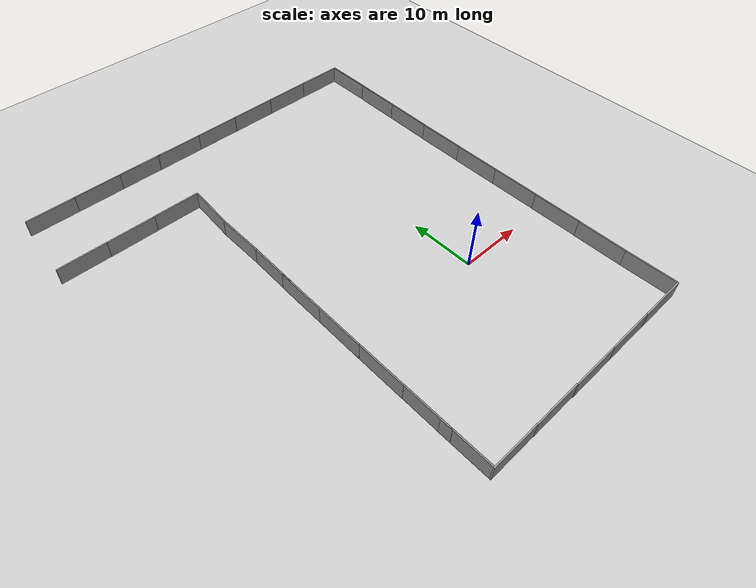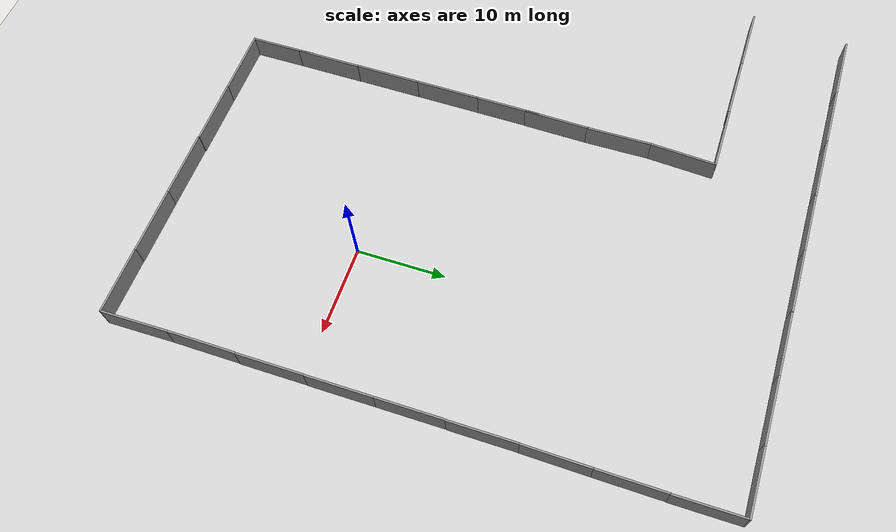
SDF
<sdf version="1.4">
 <world name="default">
  <light name="sun" type="directional">
   <pose>0 0 10 0 -0 0</pose>
   <diffuse>0.8 0.8 0.8 1</diffuse>
   <specular>0.2 0.2 0.2 1</specular>
   <attenuation>
    <range>1000</range>
    <constant>0.9</constant>
    <linear>0.01</linear>
    <quadratic>0.001</quadratic>
   </attenuation>
   <direction>0.5 0.1 -0.9</direction>
  </light>
  <model name="ground_plane">
   <static>1</static>
   <link name="link">
    <collision name="collision">
     <geometry><plane><normal>0 0 1</normal><size>100 100</size></plane></geometry>
     <surface><friction><ode><mu>100</mu><mu2>50</mu2></ode></friction></surface>
    </collision>
    <visual name="visual">
     <cast_shadows>0</cast_shadows>
     <geometry><plane><normal>0 0 1</normal><size>100 100</size></plane></geometry>
     <material>
      <script><uri>file://media/materials/scripts/gazebo.material</uri><name>Gazebo/Grey</name></script>
     </material>
    </visual>
    <velocity_decay><linear>0</linear><angular>0</angular></velocity_decay>
   </link>
  </model>
  <physics type="ode">
   <max_step_size>0.001</max_step_size>
   <real_time_factor>1</real_time_factor>
   <real_time_update_rate>1000</real_time_update_rate>
   <gravity>0 0 -9.8</gravity>
  </physics>
  <scene>
   <ambient>0 0 0 1</ambient>
   <shadows>1</shadows>
   <grid>0</grid>
   <background>0.7 0.7 0.7 1</background>
  </scene>
  <spherical_coordinates>
   <surface_model>EARTH_WGS84</surface_model>
   <latitude_deg>0</latitude_deg>
   <longitude_deg>0</longitude_deg>
   <elevation>0</elevation>
   <heading_deg>0</heading_deg>
  </spherical_coordinates>
  <model name="grey_wall_0">
   <static>1</static>
   <link name="link">
    <pose>0 0 1.4 0 -0 0</pose>
    <collision name="collision"><geometry><box><size>7.5 0.2 2.8</size></box></geometry></collision>
    <visual name="visual">
     <cast_shadows>0</cast_shadows>
     <geometry><box><size>7.5 0.2 2.8</size></box></geometry>
     <material>
      <script>
       <uri>model://grey_wall/materials/scripts</uri>
       <uri>model://grey_wall/materials/textures</uri>
       <name>vrc/grey_wall</name>
      </script>
     </material>
    </visual>
    <velocity_decay><linear>0</linear><angular>0</angular></velocity_decay>
   </link>
   <pose>11.9495 -21.5417 0 0 -0 0</pose>
  </model>
  <model name="grey_wall_1">
   <static>1</static>
   <link name="link">
    <pose>0 0 1.4 0 -0 0</pose>
    <collision name="collision"><geometry><box><size>7.5 0.2 2.8</size></box></geometry></collision>
    <visual name="visual">
     <cast_shadows>0</cast_shadows>
     <geometry><box><size>7.5 0.2 2.8</size></box></geometry>
     <material>
      <script>
       <uri>model://grey_wall/materials/scripts</uri>
       <uri>model://grey_wall/materials/textures</uri>
       <name>vrc/grey_wall</name>
      </script>
     </material>
    </visual>
    <velocity_decay><linear>0</linear><angular>0</angular></velocity_decay>
   </link>
   <pose>4.46115 -21.5125 0 0 -0 0</pose>
  </model>
  <model name="grey_wall_2">
   <static>1</static>
   <link name="link">
    <pose>0 0 1.4 0 -0 0</pose>
    <collision name="collision"><geometry><box><size>7.5 0.2 2.8</size></box></geometry></collision>
    <visual name="visual">
     <cast_shadows>0</cast_shadows>
     <geometry><box><size>7.5 0.2 2.8</size></box></geometry>
     <material>
      <script>
       <uri>model://grey_wall/materials/scripts</uri>
       <uri>model://grey_wall/materials/textures</uri>
       <name>vrc/grey_wall</name>
      </script>
     </material>
    </visual>
    <velocity_decay><linear>0</linear><angular>0</angular></velocity_decay>
   </link>
   <pose>-3 -21.5146 0 0 -0 0</pose>
  </model>
  <model name="grey_wall_3">
   <static>1</static>
   <link name="link">
    <pose>0 0 1.4 0 -0 0</pose>
    <collision name="collision"><geometry><box><size>7.5 0.2 2.8</size></box></geometry></collision>
    <visual name="visual">
     <cast_shadows>0</cast_shadows>
     <geometry><box><size>7.5 0.2 2.8</size></box></geometry>
     <material>
      <script>
       <uri>model://grey_wall/materials/scripts</uri>
       <uri>model://grey_wall/materials/textures</uri>
       <name>vrc/grey_wall</name>
      </script>
     </material>
    </visual>
    <velocity_decay><linear>0</linear><angular>0</angular></velocity_decay>
   </link>
   <pose>-10.457 -21.4428 0 0 -0 0</pose>
  </model>
  <model name="grey_wall_4">
   <static>1</static>
   <link name="link">
    <pose>0 0 1.4 0 -0 0</pose>
    <collision name="collision"><geometry><box><size>7.5 0.2 2.8</size></box></geometry></collision>
    <visual name="visual">
     <cast_shadows>0</cast_shadows>
     <geometry><box><size>7.5 0.2 2.8</size></box></geometry>
     <material>
      <script>
       <uri>model://grey_wall/materials/scripts</uri>
       <uri>model://grey_wall/materials/textures</uri>
       <name>vrc/grey_wall</name>
      </script>
     </material>
    </visual>
    <velocity_decay><linear>0</linear><angular>0</angular></velocity_decay>
   </link>
   <pose>-17.8741 -21.4252 0 0 -0 0</pose>
  </model>
  <model name="grey_wall_6">
   <static>1</static>
   <link name="link">
    <pose>0 0 1.4 0 -0 0</pose>
    <collision name="collision"><geometry><box><size>7.5 0.2 2.8</size></box></geometry></collision>
    <visual name="visual">
     <cast_shadows>0</cast_shadows>
     <geometry><box><size>7.5 0.2 2.8</size></box></geometry>
     <material>
      <script>
       <uri>model://grey_wall/materials/scripts</uri>
       <uri>model://grey_wall/materials/textures</uri>
       <name>vrc/grey_wall</name>
      </script>
     </material>
    </visual>
    <velocity_decay><linear>0</linear><angular>0</angular></velocity_decay>
   </link>
   <pose>15.6069 -17.7328 0 0 -0 1.58364</pose>
  </model>
  <model name="grey_wall_7">
   <static>1</static>
   <link name="link">
    <pose>0 0 1.4 0 -0 0</pose>
    <collision name="collision"><geometry><box><size>7.5 0.2 2.8</size></box></geometry></collision>
    <visual name="visual">
     <cast_shadows>0</cast_shadows>
     <geometry><box><size>7.5 0.2 2.8</size></box></geometry>
     <material>
      <script>
       <uri>model://grey_wall/materials/scripts</uri>
       <uri>model://grey_wall/materials/textures</uri>
       <name>vrc/grey_wall</name>
      </script>
     </material>
    </visual>
    <velocity_decay><linear>0</linear><angular>0</angular></velocity_decay>
   </link>
   <pose>15.5792 -10.2805 0 0 0 -1.5757</pose>
  </model>
  <model name="grey_wall_8">
   <static>1</static>
   <link name="link">
    <pose>0 0 1.4 0 -0 0</pose>
    <collision name="collision"><geometry><box><size>7.5 0.2 2.8</size></box></geometry></collision>
    <visual name="visual">
     <cast_shadows>0</cast_shadows>
     <geometry><box><size>7.5 0.2 2.8</size></box></geometry>
     <material>
      <script>
       <uri>model://grey_wall/materials/scripts</uri>
       <uri>model://grey_wall/materials/textures</uri>
       <name>vrc/grey_wall</name>
      </script>
     </material>
    </visual>
    <velocity_decay><linear>0</linear><angular>0</angular></velocity_decay>
   </link>
   <pose>15.6357 -2.80636 0 0 0 -1.57048</pose>
  </model>
  <model name="grey_wall_9">
   <static>1</static>
   <link name="link">
    <pose>0 0 1.4 0 -0 0</pose>
    <collision name="collision"><geometry><box><size>7.5 0.2 2.8</size></box></geometry></collision>
    <visual name="visual">
     <cast_shadows>0</cast_shadows>
     <geometry><box><size>7.5 0.2 2.8</size></box></geometry>
     <material>
      <script>
       <uri>model://grey_wall/materials/scripts</uri>
       <uri>model://grey_wall/materials/textures</uri>
       <name>vrc/grey_wall</name>
      </script>
     </material>
    </visual>
    <velocity_decay><linear>0</linear><angular>0</angular></velocity_decay>
   </link>
   <pose>15.6626 4.62392 0 0 0 -1.57072</pose>
  </model>
  <model name="grey_wall_10">
   <static>1</static>
   <link name="link">
    <pose>0 0 1.4 0 -0 0</pose>
    <collision name="collision"><geometry><box><size>7.5 0.2 2.8</size></box></geometry></collision>
    <visual name="visual">
     <cast_shadows>0</cast_shadows>
     <geometry><box><size>7.5 0.2 2.8</size></box></geometry>
     <material>
      <script>
       <uri>model://grey_wall/materials/scripts</uri>
       <uri>model://grey_wall/materials/textures</uri>
       <name>vrc/grey_wall</name>
      </script>
     </material>
    </visual>
    <velocity_decay><linear>0</linear><angular>0</angular></velocity_decay>
   </link>
   <pose>15.665 11.9925 0 0 0 -1.57143</pose>
  </model>
  <model name="grey_wall_11">
   <static>1</static>
   <link name="link">
    <pose>0 0 1.4 0 -0 0</pose>
    <collision name="collision"><geometry><box><size>7.5 0.2 2.8</size></box></geometry></collision>
    <visual name="visual">
     <cast_shadows>0</cast_shadows>
     <geometry><box><size>7.5 0.2 2.8</size></box></geometry>
     <material>
      <script>
       <uri>model://grey_wall/materials/scripts</uri>
       <uri>model://grey_wall/materials/textures</uri>
       <name>vrc/grey_wall</name>
      </script>
     </material>
    </visual>
    <velocity_decay><linear>0</linear><angular>0</angular></velocity_decay>
   </link>
   <pose>15.8981 34.2262 0 0 0 -1.58174</pose>
  </model>
  <model name="grey_wall_12">
   <static>1</static>
   <link name="link">
    <pose>0 0 1.4 0 -0 0</pose>
    <collision name="collision"><geometry><box><size>7.5 0.2 2.8</size></box></geometry></collision>
    <visual name="visual">
     <cast_shadows>0</cast_shadows>
     <geometry><box><size>7.5 0.2 2.8</size></box></geometry>
     <material>
      <script>
       <uri>model://grey_wall/materials/scripts</uri>
       <uri>model://grey_wall/materials/textures</uri>
       <name>vrc/grey_wall</name>
      </script>
     </material>
    </visual>
    <velocity_decay><linear>0</linear><angular>0</angular></velocity_decay>
   </link>
   <pose>15.8003 26.8897 0 0 0 -1.58522</pose>
  </model>
  <model name="grey_wall_13">
   <static>1</static>
   <link name="link">
    <pose>0 0 1.4 0 -0 0</pose>
    <collision name="collision"><geometry><box><size>7.5 0.2 2.8</size></box></geometry></collision>
    <visual name="visual">
     <cast_shadows>0</cast_shadows>
     <geometry><box><size>7.5 0.2 2.8</size></box></geometry>
     <material>
      <script>
       <uri>model://grey_wall/materials/scripts</uri>
       <uri>model://grey_wall/materials/textures</uri>
       <name>vrc/grey_wall</name>
      </script>
     </material>
    </visual>
    <velocity_decay><linear>0</linear><angular>0</angular></velocity_decay>
   </link>
   <pose>15.7093 19.4176 0 0 0 -1.57249</pose>
  </model>
  <model name="grey_wall_14">
   <static>1</static>
   <link name="link">
    <pose>0 0 1.4 0 -0 0</pose>
    <collision name="collision"><geometry><box><size>7.5 0.2 2.8</size></box></geometry></collision>
    <visual name="visual">
     <cast_shadows>0</cast_shadows>
     <geometry><box><size>7.5 0.2 2.8</size></box></geometry>
     <material>
      <script>
       <uri>model://grey_wall/materials/scripts</uri>
       <uri>model://grey_wall/materials/textures</uri>
       <name>vrc/grey_wall</name>
      </script>
     </material>
    </visual>
    <velocity_decay><linear>0</linear><angular>0</angular></velocity_decay>
   </link>
   <pose>15.9757 41.6543 0 0 0 -1.57098</pose>
  </model>
  <model name="grey_wall_15">
   <static>1</static>
   <link name="link">
    <pose>0 0 1.4 0 -0 0</pose>
    <collision name="collision"><geometry><box><size>7.5 0.2 2.8</size></box></geometry></collision>
    <visual name="visual">
     <cast_shadows>0</cast_shadows>
     <geometry><box><size>7.5 0.2 2.8</size></box></geometry>
     <material>
      <script>
       <uri>model://grey_wall/materials/scripts</uri>
       <uri>model://grey_wall/materials/textures</uri>
       <name>vrc/grey_wall</name>
      </script>
     </material>
    </visual>
    <velocity_decay><linear>0</linear><angular>0</angular></velocity_decay>
   </link>
   <pose>-21.5248 -17.7015 0 0 0 -1.56656</pose>
  </model>
  <model name="grey_wall_16">
   <static>1</static>
   <link name="link">
    <pose>0 0 1.4 0 -0 0</pose>
    <collision name="collision"><geometry><box><size>7.5 0.2 2.8</size></box></geometry></collision>
    <visual name="visual">
     <cast_shadows>0</cast_shadows>
     <geometry><box><size>7.5 0.2 2.8</size></box></geometry>
     <material>
      <script>
       <uri>model://grey_wall/materials/scripts</uri>
       <uri>model://grey_wall/materials/textures</uri>
       <name>vrc/grey_wall</name>
      </script>
     </material>
    </visual>
    <velocity_decay><linear>0</linear><angular>0</angular></velocity_decay>
   </link>
   <pose>-21.5208 -12 0 0 0 -1.57415</pose>
  </model>
  <model name="grey_wall_17">
   <static>1</static>
   <link name="link">
    <pose>0 0 1.4 0 -0 0</pose>
    <collision name="collision"><geometry><box><size>7.5 0.2 2.8</size></box></geometry></collision>
    <visual name="visual">
     <cast_shadows>0</cast_shadows>
     <geometry><box><size>7.5 0.2 2.8</size></box></geometry>
     <material>
      <script>
       <uri>model://grey_wall/materials/scripts</uri>
       <uri>model://grey_wall/materials/textures</uri>
       <name>vrc/grey_wall</name>
      </script>
     </material>
    </visual>
    <velocity_decay><linear>0</linear><angular>0</angular></velocity_decay>
   </link>
   <pose>-21.5209 -4.59777 0 0 0 -1.57509</pose>
  </model>
  <model name="grey_wall_18">
   <static>1</static>
   <link name="link">
    <pose>0 0 1.4 0 -0 0</pose>
    <collision name="collision"><geometry><box><size>7.5 0.2 2.8</size></box></geometry></collision>
    <visual name="visual">
     <cast_shadows>0</cast_shadows>
     <geometry><box><size>7.5 0.2 2.8</size></box></geometry>
     <material>
      <script>
       <uri>model://grey_wall/materials/scripts</uri>
       <uri>model://grey_wall/materials/textures</uri>
       <name>vrc/grey_wall</name>
      </script>
     </material>
    </visual>
    <velocity_decay><linear>0</linear><angular>0</angular></velocity_decay>
   </link>
   <pose>-21.497 2.74679 0 0 0 -1.57722</pose>
  </model>
  <model name="grey_wall_19">
   <static>1</static>
   <link name="link">
    <pose>0 0 1.4 0 -0 0</pose>
    <collision name="collision"><geometry><box><size>7.5 0.2 2.8</size></box></geometry></collision>
    <visual name="visual">
     <cast_shadows>0</cast_shadows>
     <geometry><box><size>7.5 0.2 2.8</size></box></geometry>
     <material>
      <script>
       <uri>model://grey_wall/materials/scripts</uri>
       <uri>model://grey_wall/materials/textures</uri>
       <name>vrc/grey_wall</name>
      </script>
     </material>
    </visual>
    <velocity_decay><linear>0</linear><angular>0</angular></velocity_decay>
   </link>
   <pose>-21.452 10.0969 0 0 0 -1.57666</pose>
  </model>
  <model name="grey_wall_20">
   <static>1</static>
   <link name="link">
    <pose>0 0 1.4 0 -0 0</pose>
    <collision name="collision"><geometry><box><size>7.5 0.2 2.8</size></box></geometry></collision>
    <visual name="visual">
     <cast_shadows>0</cast_shadows>
     <geometry><box><size>7.5 0.2 2.8</size></box></geometry>
     <material>
      <script>
       <uri>model://grey_wall/materials/scripts</uri>
       <uri>model://grey_wall/materials/textures</uri>
       <name>vrc/grey_wall</name>
      </script>
     </material>
    </visual>
    <velocity_decay><linear>0</linear><angular>0</angular></velocity_decay>
   </link>
   <pose>-31.1365 45.5106 0 0 -0 0</pose>
  </model>
  <model name="grey_wall_21">
   <static>1</static>
   <link name="link">
    <pose>0 0 1.4 0 -0 0</pose>
    <collision name="collision"><geometry><box><size>7.5 0.2 2.8</size></box></geometry></collision>
    <visual name="visual">
     <cast_shadows>0</cast_shadows>
     <geometry><box><size>7.5 0.2 2.8</size></box></geometry>
     <material>
      <script>
       <uri>model://grey_wall/materials/scripts</uri>
       <uri>model://grey_wall/materials/textures</uri>
       <name>vrc/grey_wall</name>
      </script>
     </material>
    </visual>
    <velocity_decay><linear>0</linear><angular>0</angular></velocity_decay>
   </link>
   <pose>-24.0972 45.5131 0 0 -0 0</pose>
  </model>
  <model name="grey_wall_22">
   <static>1</static>
   <link name="link">
    <pose>0 0 1.4 0 -0 0</pose>
    <collision name="collision"><geometry><box><size>7.5 0.2 2.8</size></box></geometry></collision>
    <visual name="visual">
     <cast_shadows>0</cast_shadows>
     <geometry><box><size>7.5 0.2 2.8</size></box></geometry>
     <material>
      <script>
       <uri>model://grey_wall/materials/scripts</uri>
       <uri>model://grey_wall/materials/textures</uri>
       <name>vrc/grey_wall</name>
      </script>
     </material>
    </visual>
    <velocity_decay><linear>0</linear><angular>0</angular></velocity_decay>
   </link>
   <pose>-16.9789 45.491 0 0 -0 0</pose>
  </model>
  <model name="grey_wall_23">
   <static>1</static>
   <link name="link">
    <pose>0 0 1.4 0 -0 0</pose>
    <collision name="collision"><geometry><box><size>7.5 0.2 2.8</size></box></geometry></collision>
    <visual name="visual">
     <cast_shadows>0</cast_shadows>
     <geometry><box><size>7.5 0.2 2.8</size></box></geometry>
     <material>
      <script>
       <uri>model://grey_wall/materials/scripts</uri>
       <uri>model://grey_wall/materials/textures</uri>
       <name>vrc/grey_wall</name>
      </script>
     </material>
    </visual>
    <velocity_decay><linear>0</linear><angular>0</angular></velocity_decay>
   </link>
   <pose>-9.61692 45.4978 0 0 -0 0</pose>
  </model>
  <model name="grey_wall_24">
   <static>1</static>
   <link name="link">
    <pose>0 0 1.4 0 -0 0</pose>
    <collision name="collision"><geometry><box><size>7.5 0.2 2.8</size></box></geometry></collision>
    <visual name="visual">
     <cast_shadows>0</cast_shadows>
     <geometry><box><size>7.5 0.2 2.8</size></box></geometry>
     <material>
      <script>
       <uri>model://grey_wall/materials/scripts</uri>
       <uri>model://grey_wall/materials/textures</uri>
       <name>vrc/grey_wall</name>
      </script>
     </material>
    </visual>
    <velocity_decay><linear>0</linear><angular>0</angular></velocity_decay>
   </link>
   <pose>-2.36117 45.4782 0 0 -0 0</pose>
  </model>
  <model name="grey_wall_25">
   <static>1</static>
   <link name="link">
    <pose>0 0 1.4 0 -0 0</pose>
    <collision name="collision"><geometry><box><size>7.5 0.2 2.8</size></box></geometry></collision>
    <visual name="visual">
     <cast_shadows>0</cast_shadows>
     <geometry><box><size>7.5 0.2 2.8</size></box></geometry>
     <material>
      <script>
       <uri>model://grey_wall/materials/scripts</uri>
       <uri>model://grey_wall/materials/textures</uri>
       <name>vrc/grey_wall</name>
      </script>
     </material>
    </visual>
    <velocity_decay><linear>0</linear><angular>0</angular></velocity_decay>
   </link>
   <pose>5.03291 45.474 0 0 -0 0</pose>
  </model>
  <model name="grey_wall_26">
   <static>1</static>
   <link name="link">
    <pose>0 0 1.4 0 -0 0</pose>
    <collision name="collision"><geometry><box><size>7.5 0.2 2.8</size></box></geometry></collision>
    <visual name="visual">
     <cast_shadows>0</cast_shadows>
     <geometry><box><size>7.5 0.2 2.8</size></box></geometry>
     <material>
      <script>
       <uri>model://grey_wall/materials/scripts</uri>
       <uri>model://grey_wall/materials/textures</uri>
       <name>vrc/grey_wall</name>
      </script>
     </material>
    </visual>
    <velocity_decay><linear>0</linear><angular>0</angular></velocity_decay>
   </link>
   <pose>12.2917 45.4674 0 0 -0 0</pose>
  </model>
  <model name="grey_wall_27">
   <static>1</static>
   <link name="link">
    <pose>0 0 1.4 0 -0 0</pose>
    <collision name="collision"><geometry><box><size>7.5 0.2 2.8</size></box></geometry></collision>
    <visual name="visual">
     <cast_shadows>0</cast_shadows>
     <geometry><box><size>7.5 0.2 2.8</size></box></geometry>
     <material>
      <script>
       <uri>model://grey_wall/materials/scripts</uri>
       <uri>model://grey_wall/materials/textures</uri>
       <name>vrc/grey_wall</name>
      </script>
     </material>
    </visual>
    <velocity_decay><linear>0</linear><angular>0</angular></velocity_decay>
   </link>
   <pose>-21.3577 15.9306 0 0.00456 2e-06 -1.58472</pose>
  </model>
  <model name="grey_wall_28">
   <static>1</static>
   <link name="link">
    <pose>0 0 1.4 0 -0 0</pose>
    <collision name="collision"><geometry><box><size>7.5 0.2 2.8</size></box></geometry></collision>
    <visual name="visual">
     <cast_shadows>0</cast_shadows>
     <geometry><box><size>7.5 0.2 2.8</size></box></geometry>
     <material>
      <script>
       <uri>model://grey_wall/materials/scripts</uri>
       <uri>model://grey_wall/materials/textures</uri>
       <name>vrc/grey_wall</name>
      </script>
     </material>
    </visual>
    <velocity_decay><linear>0</linear><angular>0</angular></velocity_decay>
   </link>
   <pose>-21.3437 23.2399 0 0 0 -1.55853</pose>
  </model>
  <model name="grey_wall_29">
   <static>1</static>
   <link name="link">
    <pose>0 0 1.4 0 -0 0</pose>
    <collision name="collision"><geometry><box><size>7.5 0.2 2.8</size></box></geometry></collision>
    <visual name="visual">
     <cast_shadows>0</cast_shadows>
     <geometry><box><size>7.5 0.2 2.8</size></box></geometry>
     <material>
      <script>
       <uri>model://grey_wall/materials/scripts</uri>
       <uri>model://grey_wall/materials/textures</uri>
       <name>vrc/grey_wall</name>
      </script>
     </material>
    </visual>
    <velocity_decay><linear>0</linear><angular>0</angular></velocity_decay>
   </link>
   <pose>-21.1799 30.6302 0 0 -0 1.51593</pose>
  </model>
  <model name="grey_wall_30">
   <static>1</static>
   <link name="link">
    <pose>0 0 1.4 0 -0 0</pose>
    <collision name="collision"><geometry><box><size>7.5 0.2 2.8</size></box></geometry></collision>
    <visual name="visual">
     <cast_shadows>0</cast_shadows>
     <geometry><box><size>7.5 0.2 2.8</size></box></geometry>
     <material>
      <script>
       <uri>model://grey_wall/materials/scripts</uri>
       <uri>model://grey_wall/materials/textures</uri>
       <name>vrc/grey_wall</name>
      </script>
     </material>
    </visual>
    <velocity_decay><linear>0</linear><angular>0</angular></velocity_decay>
   </link>
   <pose>-39.3552 34.3146 0 0 -0 0</pose>
  </model>
  <model name="grey_wall_31">
   <static>1</static>
   <link name="link">
    <pose>0 0 1.4 0 -0 0</pose>
    <collision name="collision"><geometry><box><size>7.5 0.2 2.8</size></box></geometry></collision>
    <visual name="visual">
     <cast_shadows>0</cast_shadows>
     <geometry><box><size>7.5 0.2 2.8</size></box></geometry>
     <material>
      <script>
       <uri>model://grey_wall/materials/scripts</uri>
       <uri>model://grey_wall/materials/textures</uri>
       <name>vrc/grey_wall</name>
      </script>
     </material>
    </visual>
    <velocity_decay><linear>0</linear><angular>0</angular></velocity_decay>
   </link>
   <pose>-31.9612 34.2947 0 0 -0 0</pose>
  </model>
  <model name="grey_wall_32">
   <static>1</static>
   <link name="link">
    <pose>0 0 1.4 0 -0 0</pose>
    <collision name="collision"><geometry><box><size>7.5 0.2 2.8</size></box></geometry></collision>
    <visual name="visual">
     <cast_shadows>0</cast_shadows>
     <geometry><box><size>7.5 0.2 2.8</size></box></geometry>
     <material>
      <script>
       <uri>model://grey_wall/materials/scripts</uri>
       <uri>model://grey_wall/materials/textures</uri>
       <name>vrc/grey_wall</name>
      </script>
     </material>
    </visual>
    <velocity_decay><linear>0</linear><angular>0</angular></velocity_decay>
   </link>
   <pose>-24.72 34.324 0 0 -0 0</pose>
  </model>
  <model name="grey_wall_33">
   <static>1</static>
   <link name="link">
    <pose>0 0 1.4 0 -0 0</pose>
    <collision name="collision"><geometry><box><size>7.5 0.2 2.8</size></box></geometry></collision>
    <visual name="visual">
     <cast_shadows>0</cast_shadows>
     <geometry><box><size>7.5 0.2 2.8</size></box></geometry>
     <material>
      <script>
       <uri>model://grey_wall/materials/scripts</uri>
       <uri>model://grey_wall/materials/textures</uri>
       <name>vrc/grey_wall</name>
      </script>
     </material>
    </visual>
    <velocity_decay><linear>0</linear><angular>0</angular></velocity_decay>
   </link>
   <pose>-38.5263 45.4975 0 0 -0 0</pose>
  </model>
 </world>
</sdf>
